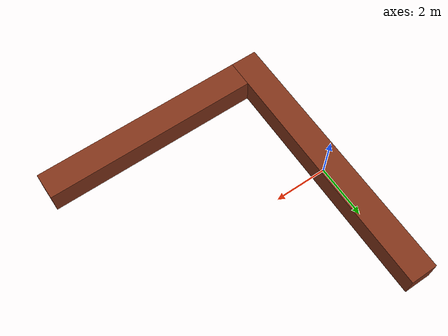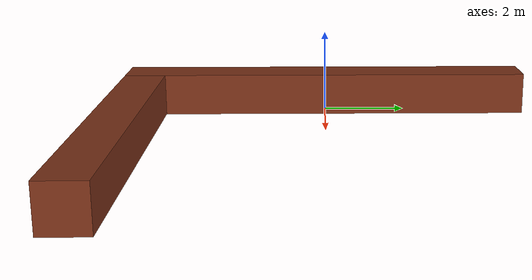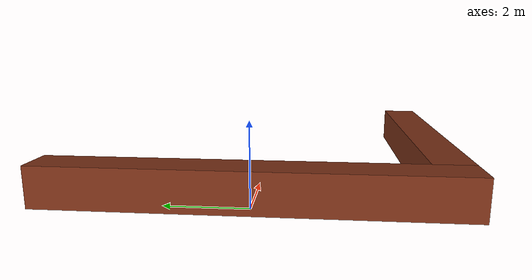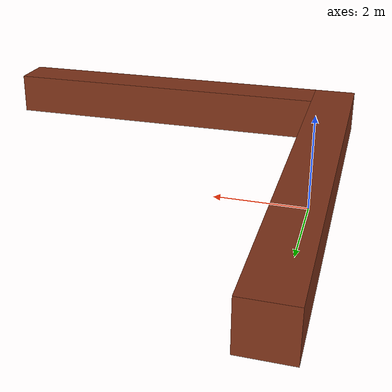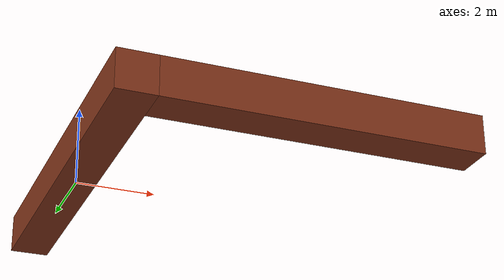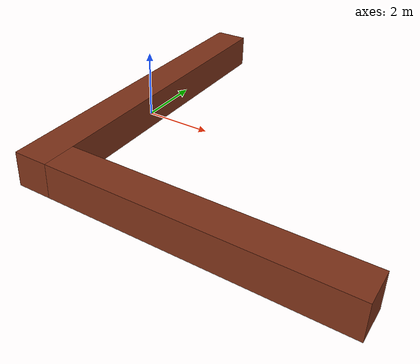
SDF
<?xml version="1.0" encoding="UTF-8"?>
<sdf version="1.4">
  <model name="L_box">
    <static>true</static>
    <link name="box">
      <!-- **********************PART1*************************** -->

      <visual name="visual_box_1">
        <pose>0 0 0.5 0 0 0</pose>
        <geometry>
          <box>
            <size>1 10 1</size>
          </box>
        </geometry>

        <material>
          <ambient>0.5 0.2 0.1 1</ambient>
        </material>
      </visual>
      <collision name="collision_box_1">
        <pose>0 0 0.5 0 0 0</pose>
        <geometry>
          <box>
            <size>1 10 1</size>
          </box>
        </geometry>
      </collision>

      <!-- **********************PART2*************************** -->
      <visual name="visual_box_2">
        <pose>4.5 -4.5 0.5 0 0 0</pose>
        <geometry>
          <box>
            <size>8 1 1</size>
          </box>
        </geometry>

        <material>
          <ambient>0.5 0.2 0.1 1</ambient>
        </material>
      </visual>
      <collision name="collision_box_2">
        <pose>4.5 -4.5 0.5 0 0 0</pose>
        <geometry>
          <box>
            <size>8 1 1</size>
          </box>
        </geometry>
      </collision>
    </link>
  </model>
</sdf>
